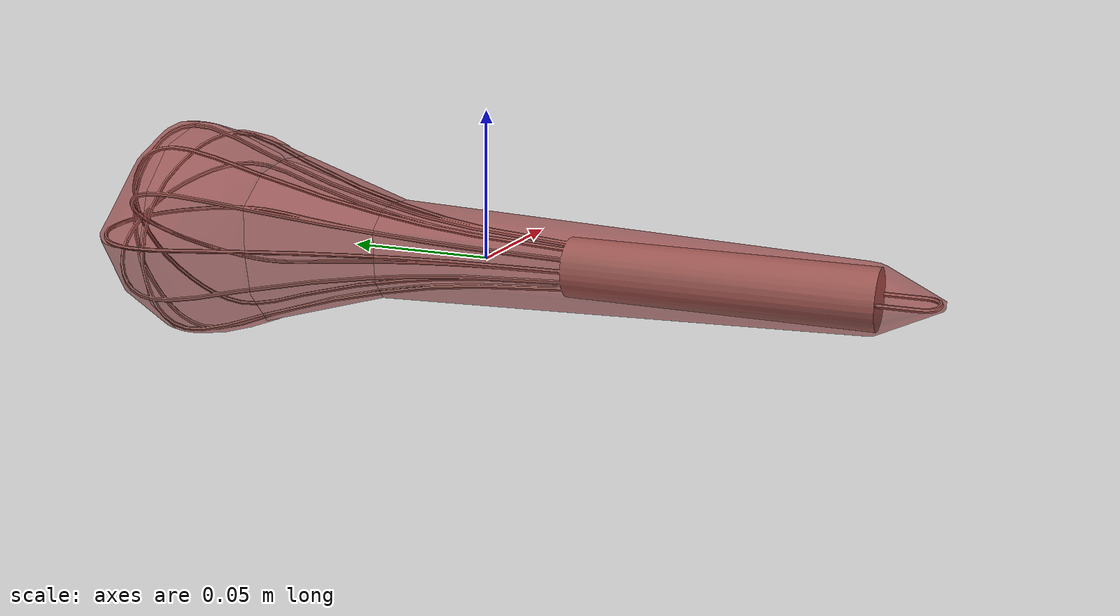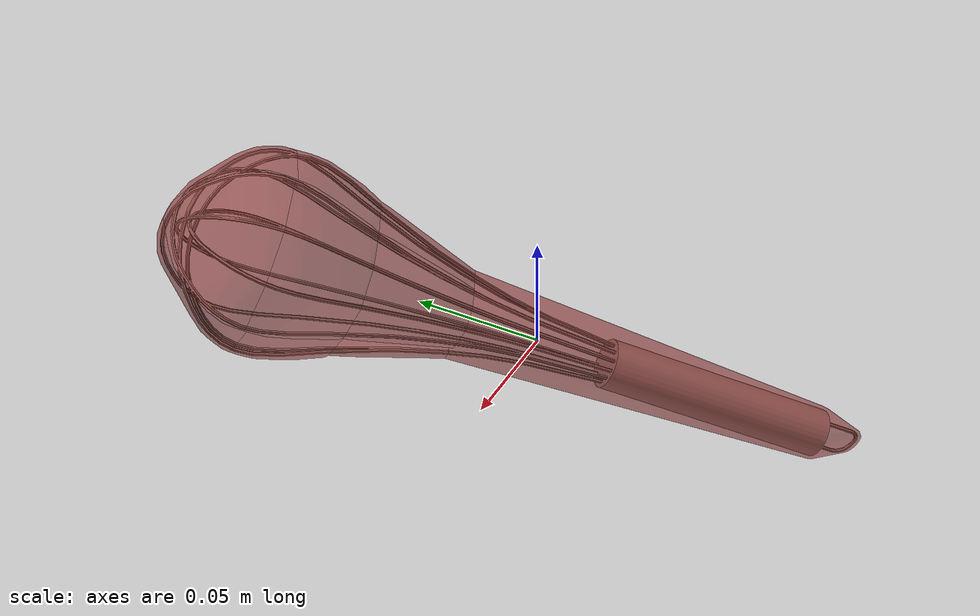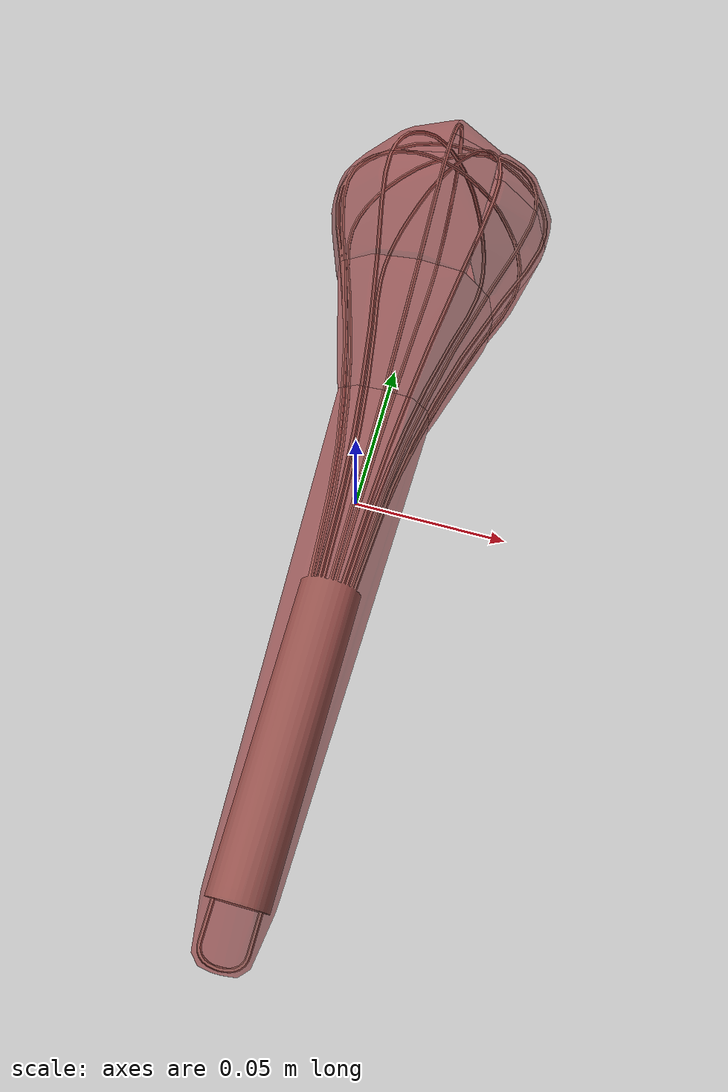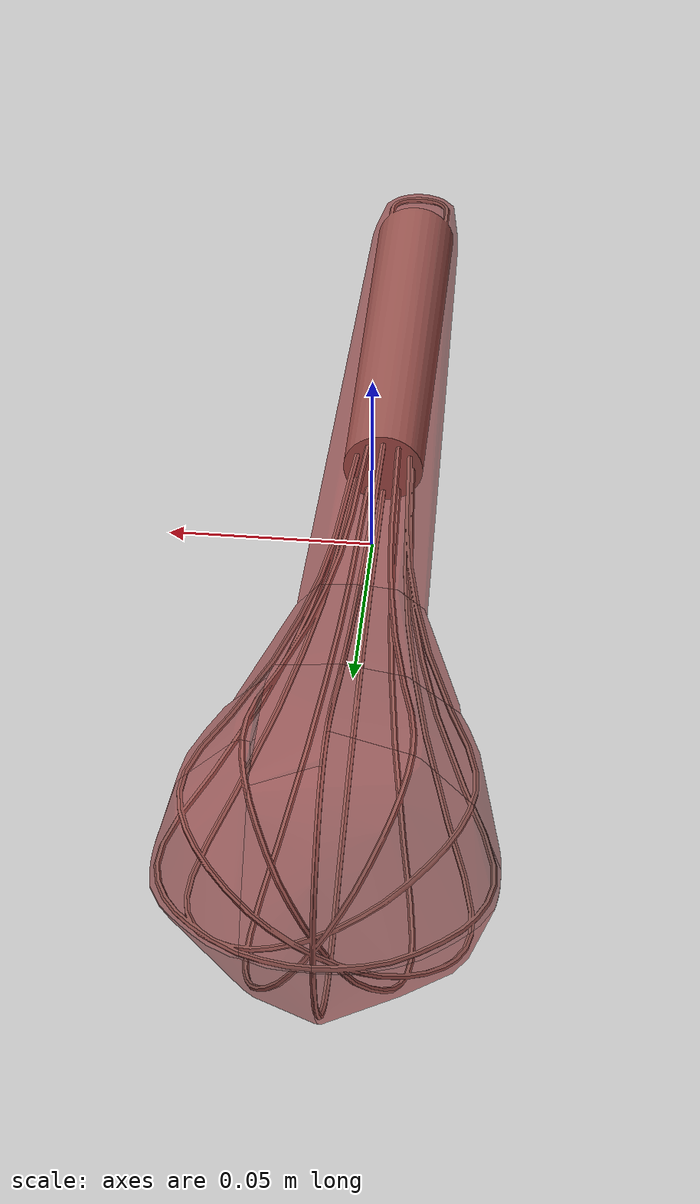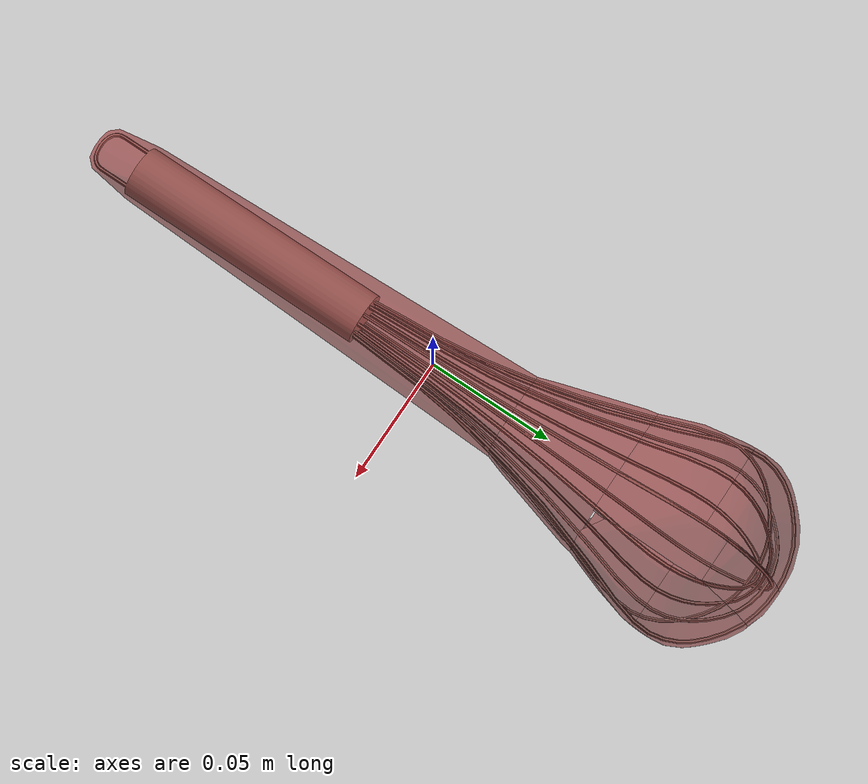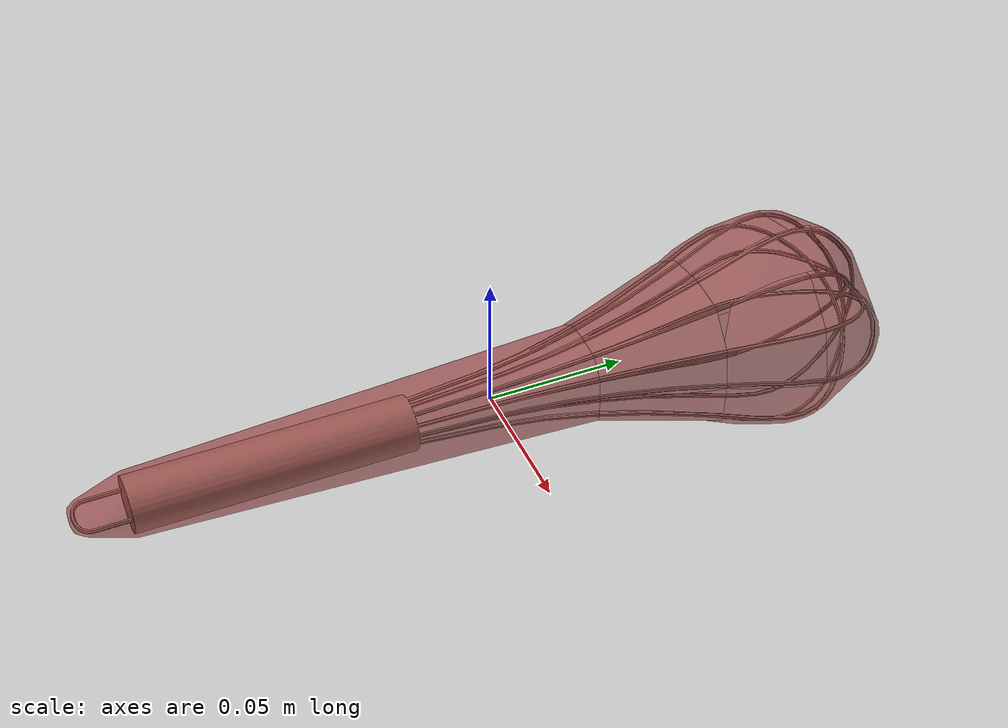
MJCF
<mujoco model="model">
  <option timestep="0.002" gravity="0.0 0.0 -9.81"/>
  <compiler angle="radian"/>
  <asset>
    <mesh file="visual/Whisk002.obj" name="Whisk002_vis"/>
    <texture file="visual/T_BC001.png" name="Whisk002_material" type="2d"/>
    <material name="Whisk002_material" rgba="1 1 1 1.0" texture="Whisk002_material" shininess="0.1" specular="15"/>
    <mesh file="collision/collision_mesh_collision_0.obj" name="Whisk002_collision_mesh_0"/>
    <mesh file="collision/collision_mesh_collision_1.obj" name="Whisk002_collision_mesh_1"/>
    <mesh file="collision/collision_mesh_collision_2.obj" name="Whisk002_collision_mesh_2"/>
    <mesh file="collision/collision_mesh_collision_3.obj" name="Whisk002_collision_mesh_3"/>
    <mesh file="collision/collision_mesh_collision_4.obj" name="Whisk002_collision_mesh_4"/>
    <mesh file="collision/collision_mesh_collision_5.obj" name="Whisk002_collision_mesh_5"/>
    <mesh file="collision/collision_mesh_collision_6.obj" name="Whisk002_collision_mesh_6"/>
    <mesh file="collision/collision_mesh_collision_7.obj" name="Whisk002_collision_mesh_7"/>
    <mesh file="collision/collision_mesh_collision_8.obj" name="Whisk002_collision_mesh_8"/>
    <mesh file="collision/collision_mesh_collision_9.obj" name="Whisk002_collision_mesh_9"/>
    <mesh file="collision/collision_mesh_collision_10.obj" name="Whisk002_collision_mesh_10"/>
    <mesh file="collision/collision_mesh_collision_11.obj" name="Whisk002_collision_mesh_11"/>
    <mesh file="collision/collision_mesh_collision_12.obj" name="Whisk002_collision_mesh_12"/>
    <mesh file="collision/collision_mesh_collision_13.obj" name="Whisk002_collision_mesh_13"/>
    <mesh file="collision/collision_mesh_collision_14.obj" name="Whisk002_collision_mesh_14"/>
  </asset>
  <default>
    <default class="visual">
      <geom conaffinity="0" contype="0" group="1" type="mesh"/>
    </default>
    <default class="collision">
      <geom group="0" rgba="0.5 0 0 0.5" density="1.0" solref="0.004 1" solimp="0.998 0.998 0.001"/>
    </default>
    <default class="spawn">
      <geom group="0" rgba="1 1 1 0.5" contype="0" conaffinity="0"/>
      <site group="0" rgba="1 1 1 0.5"/>
    </default>
    <default class="region">
      <geom group="1" conaffinity="0" contype="0" rgba="0 1 0 0" mass="0"/>
    </default>
  </default>
  <worldbody>
    <body>
      <body name="object">
        <geom mesh="Whisk002_vis" type="mesh" solimp="0.998 0.998 0.001" solref="0.001 1" friction="0.95 0.3 0.1" class="visual" material="Whisk002_material"/>
        <geom class="region" name="reg_bbox" type="box" pos="0.0 2.6619999999991095e-05 0.0" size="0.03952908 0.14960911999999998 0.0395257"/>
        <geom mesh="Whisk002_collision_mesh_0" type="mesh" class="collision"/>
        <geom mesh="Whisk002_collision_mesh_1" type="mesh" class="collision"/>
        <geom mesh="Whisk002_collision_mesh_2" type="mesh" class="collision"/>
        <geom mesh="Whisk002_collision_mesh_3" type="mesh" class="collision"/>
        <geom mesh="Whisk002_collision_mesh_4" type="mesh" class="collision"/>
        <geom mesh="Whisk002_collision_mesh_5" type="mesh" class="collision"/>
        <geom mesh="Whisk002_collision_mesh_6" type="mesh" class="collision"/>
        <geom mesh="Whisk002_collision_mesh_7" type="mesh" class="collision"/>
        <geom mesh="Whisk002_collision_mesh_8" type="mesh" class="collision"/>
        <geom mesh="Whisk002_collision_mesh_9" type="mesh" class="collision"/>
        <geom mesh="Whisk002_collision_mesh_10" type="mesh" class="collision"/>
        <geom mesh="Whisk002_collision_mesh_11" type="mesh" class="collision"/>
        <geom mesh="Whisk002_collision_mesh_12" type="mesh" class="collision"/>
        <geom mesh="Whisk002_collision_mesh_13" type="mesh" class="collision"/>
        <geom mesh="Whisk002_collision_mesh_14" type="mesh" class="collision"/>
      </body>
    </body>
  </worldbody>
  <actuator/>
</mujoco>
